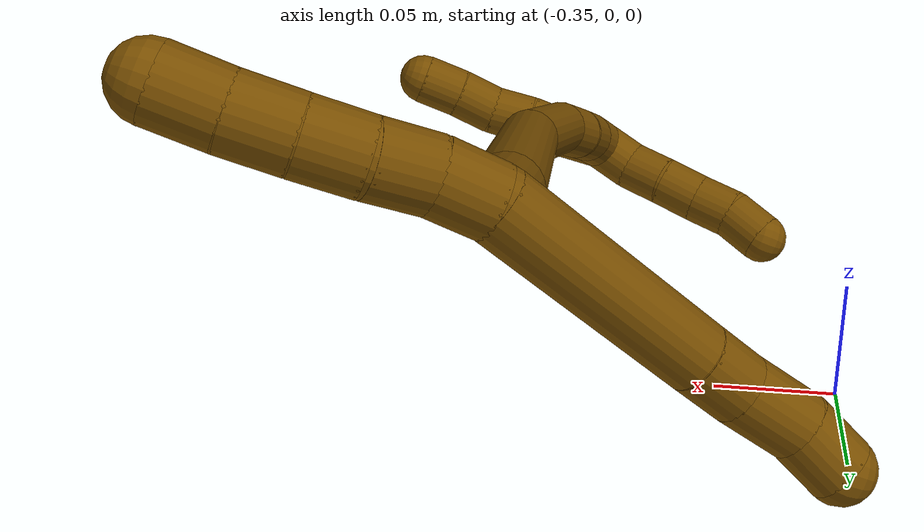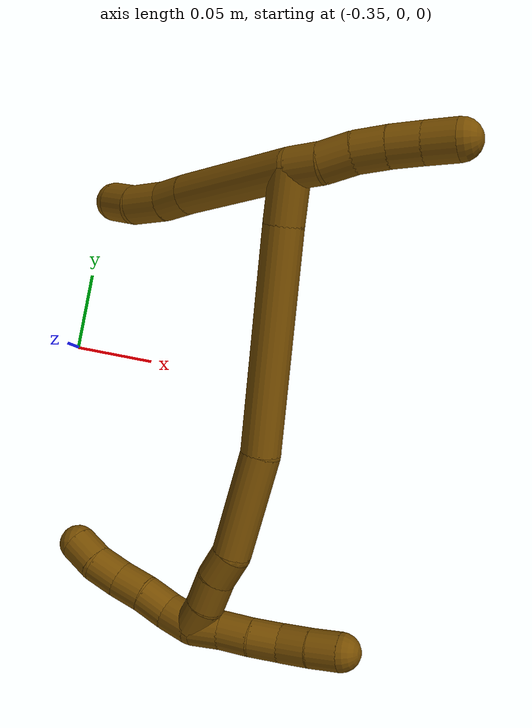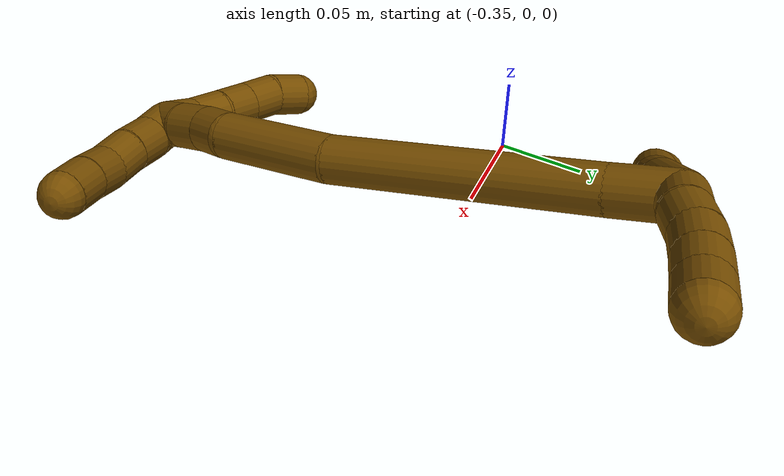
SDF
<sdf version="1.7">
 <world name="default">
  <model name="12">
   <static>0</static>
   <link name="12">
    <collision name="collision-cylinder-e_1_2_8">
     <pose>-0.012821 -0.003618 0.03956 0.091214 -0.312192 -0.014365</pose>
     <geometry><cylinder><radius>0.0125</radius><length>0.083485</length></cylinder></geometry>
     <surface>
      <friction><ode><mu>1.16</mu><mu2>1.16</mu2><slip1>0</slip1><slip2>0</slip2></ode></friction>
      <contact><ode><kp>1e+06</kp><kd>1</kd><max_vel>0</max_vel><min_depth>0.001</min_depth></ode></contact>
     </surface>
    </collision>
    <visual name="visual-cylinder-e_1_2_8">
     <pose>-0.012821 -0.003618 0.03956 0.091214 -0.312192 -0.014365</pose>
     <geometry><cylinder><radius>0.0125</radius><length>0.083485</length></cylinder></geometry>
     <material><ambient>0.466667 0.301961 0 1</ambient></material>
    </visual>
    <collision name="collision-cylinder-e_2_8_9">
     <pose>-0.028686 -0.008532 0.088556 0.136434 -0.309344 -0.021305</pose>
     <geometry><cylinder><radius>0.0125</radius><length>0.02</length></cylinder></geometry>
     <surface>
      <friction><ode><mu>1.16</mu><mu2>1.16</mu2><slip1>0</slip1><slip2>0</slip2></ode></friction>
      <contact><ode><kp>1e+06</kp><kd>1</kd><max_vel>0</max_vel><min_depth>0.001</min_depth></ode></contact>
     </surface>
    </collision>
    <visual name="visual-cylinder-e_2_8_9">
     <pose>-0.028686 -0.008532 0.088556 0.136434 -0.309344 -0.021305</pose>
     <geometry><cylinder><radius>0.0125</radius><length>0.02</length></cylinder></geometry>
     <material><ambient>0.466667 0.301961 0 1</ambient></material>
    </visual>
    <collision name="collision-cylinder-e_3_9_10">
     <pose>-0.034634 -0.009941 0.110633 0.008936 -0.225742 -0.001013</pose>
     <geometry><cylinder><radius>0.0125</radius><length>0.025939</length></cylinder></geometry>
     <surface>
      <friction><ode><mu>1.16</mu><mu2>1.16</mu2><slip1>0</slip1><slip2>0</slip2></ode></friction>
      <contact><ode><kp>1e+06</kp><kd>1</kd><max_vel>0</max_vel><min_depth>0.001</min_depth></ode></contact>
     </surface>
    </collision>
    <visual name="visual-cylinder-e_3_9_10">
     <pose>-0.034634 -0.009941 0.110633 0.008936 -0.225742 -0.001013</pose>
     <geometry><cylinder><radius>0.0125</radius><length>0.025939</length></cylinder></geometry>
     <material><ambient>0.466667 0.301961 0 1</ambient></material>
    </visual>
    <collision name="collision-cylinder-e_4_10_6">
     <pose>-0.041587 -0.008222 0.132551 -0.194952 -0.404697 0.040117</pose>
     <geometry><cylinder><radius>0.0125</radius><length>0.020576</length></cylinder></geometry>
     <surface>
      <friction><ode><mu>1.16</mu><mu2>1.16</mu2><slip1>0</slip1><slip2>0</slip2></ode></friction>
      <contact><ode><kp>1e+06</kp><kd>1</kd><max_vel>0</max_vel><min_depth>0.001</min_depth></ode></contact>
     </surface>
    </collision>
    <visual name="visual-cylinder-e_4_10_6">
     <pose>-0.041587 -0.008222 0.132551 -0.194952 -0.404697 0.040117</pose>
     <geometry><cylinder><radius>0.0125</radius><length>0.020576</length></cylinder></geometry>
     <material><ambient>0.466667 0.301961 0 1</ambient></material>
    </visual>
    <collision name="collision-cylinder-e_1_2_11">
     <pose>0.00074 0.000485 -0.009961 -3.09296 0.07402 -1.97923</pose>
     <geometry><cylinder><radius>0.0125</radius><length>0.02</length></cylinder></geometry>
     <surface>
      <friction><ode><mu>1.16</mu><mu2>1.16</mu2><slip1>0</slip1><slip2>0</slip2></ode></friction>
      <contact><ode><kp>1e+06</kp><kd>1</kd><max_vel>0</max_vel><min_depth>0.001</min_depth></ode></contact>
     </surface>
    </collision>
    <visual name="visual-cylinder-e_1_2_11">
     <pose>0.00074 0.000485 -0.009961 -3.09296 0.07402 -1.97923</pose>
     <geometry><cylinder><radius>0.0125</radius><length>0.02</length></cylinder></geometry>
     <material><ambient>0.466667 0.301961 0 1</ambient></material>
    </visual>
    <collision name="collision-cylinder-e_2_11_12">
     <pose>0.001053 0.003026 -0.029699 -2.93431 -0.042581 0.403868</pose>
     <geometry><cylinder><radius>0.0125</radius><length>0.02</length></cylinder></geometry>
     <surface>
      <friction><ode><mu>1.16</mu><mu2>1.16</mu2><slip1>0</slip1><slip2>0</slip2></ode></friction>
      <contact><ode><kp>1e+06</kp><kd>1</kd><max_vel>0</max_vel><min_depth>0.001</min_depth></ode></contact>
     </surface>
    </collision>
    <visual name="visual-cylinder-e_2_11_12">
     <pose>0.001053 0.003026 -0.029699 -2.93431 -0.042581 0.403868</pose>
     <geometry><cylinder><radius>0.0125</radius><length>0.02</length></cylinder></geometry>
     <material><ambient>0.466667 0.301961 0 1</ambient></material>
    </visual>
    <collision name="collision-cylinder-e_3_12_13">
     <pose>0.000288 0.005692 -0.049451 -3.08052 -0.034021 1.01634</pose>
     <geometry><cylinder><radius>0.0125</radius><length>0.02</length></cylinder></geometry>
     <surface>
      <friction><ode><mu>1.16</mu><mu2>1.16</mu2><slip1>0</slip1><slip2>0</slip2></ode></friction>
      <contact><ode><kp>1e+06</kp><kd>1</kd><max_vel>0</max_vel><min_depth>0.001</min_depth></ode></contact>
     </surface>
    </collision>
    <visual name="visual-cylinder-e_3_12_13">
     <pose>0.000288 0.005692 -0.049451 -3.08052 -0.034021 1.01634</pose>
     <geometry><cylinder><radius>0.0125</radius><length>0.02</length></cylinder></geometry>
     <material><ambient>0.466667 0.301961 0 1</ambient></material>
    </visual>
    <collision name="collision-cylinder-e_4_13_14">
     <pose>-0.000325 0.006366 -0.069423 -3.13521 -0.027265 2.68195</pose>
     <geometry><cylinder><radius>0.0125</radius><length>0.02</length></cylinder></geometry>
     <surface>
      <friction><ode><mu>1.16</mu><mu2>1.16</mu2><slip1>0</slip1><slip2>0</slip2></ode></friction>
      <contact><ode><kp>1e+06</kp><kd>1</kd><max_vel>0</max_vel><min_depth>0.001</min_depth></ode></contact>
     </surface>
    </collision>
    <visual name="visual-cylinder-e_4_13_14">
     <pose>-0.000325 0.006366 -0.069423 -3.13521 -0.027265 2.68195</pose>
     <geometry><cylinder><radius>0.0125</radius><length>0.02</length></cylinder></geometry>
     <material><ambient>0.466667 0.301961 0 1</ambient></material>
    </visual>
    <collision name="collision-cylinder-e_5_14_5">
     <pose>-0.000366 0.006311 -0.089416 3.12975 0.023187 2.19722</pose>
     <geometry><cylinder><radius>0.0125</radius><length>0.02</length></cylinder></geometry>
     <surface>
      <friction><ode><mu>1.16</mu><mu2>1.16</mu2><slip1>0</slip1><slip2>0</slip2></ode></friction>
      <contact><ode><kp>1e+06</kp><kd>1</kd><max_vel>0</max_vel><min_depth>0.001</min_depth></ode></contact>
     </surface>
    </collision>
    <visual name="visual-cylinder-e_5_14_5">
     <pose>-0.000366 0.006311 -0.089416 3.12975 0.023187 2.19722</pose>
     <geometry><cylinder><radius>0.0125</radius><length>0.02</length></cylinder></geometry>
     <material><ambient>0.466667 0.301961 0 1</ambient></material>
    </visual>
    <collision name="collision-cylinder-e_1_2_15">
     <pose>-0.001106 -0.015857 0.003654 1.34432 -0.067836 -0.05399</pose>
     <geometry><cylinder><radius>0.0125</radius><length>0.032619</length></cylinder></geometry>
     <surface>
      <friction><ode><mu>1.16</mu><mu2>1.16</mu2><slip1>0</slip1><slip2>0</slip2></ode></friction>
      <contact><ode><kp>1e+06</kp><kd>1</kd><max_vel>0</max_vel><min_depth>0.001</min_depth></ode></contact>
     </surface>
    </collision>
    <visual name="visual-cylinder-e_1_2_15">
     <pose>-0.001106 -0.015857 0.003654 1.34432 -0.067836 -0.05399</pose>
     <geometry><cylinder><radius>0.0125</radius><length>0.032619</length></cylinder></geometry>
     <material><ambient>0.466667 0.301961 0 1</ambient></material>
    </visual>
    <collision name="collision-cylinder-e_2_15_16">
     <pose>-0.004574 -0.099486 0.020224 1.38247 -0.034237 -0.028329</pose>
     <geometry><cylinder><radius>0.0125</radius><length>0.138066</length></cylinder></geometry>
     <surface>
      <friction><ode><mu>1.16</mu><mu2>1.16</mu2><slip1>0</slip1><slip2>0</slip2></ode></friction>
      <contact><ode><kp>1e+06</kp><kd>1</kd><max_vel>0</max_vel><min_depth>0.001</min_depth></ode></contact>
     </surface>
    </collision>
    <visual name="visual-cylinder-e_2_15_16">
     <pose>-0.004574 -0.099486 0.020224 1.38247 -0.034237 -0.028329</pose>
     <geometry><cylinder><radius>0.0125</radius><length>0.138066</length></cylinder></geometry>
     <material><ambient>0.466667 0.301961 0 1</ambient></material>
    </visual>
    <collision name="collision-cylinder-e_3_16_17">
     <pose>-0.007014 -0.198661 0.045112 1.20656 -0.002275 -0.001567</pose>
     <geometry><cylinder><radius>0.0125</radius><length>0.067214</length></cylinder></geometry>
     <surface>
      <friction><ode><mu>1.16</mu><mu2>1.16</mu2><slip1>0</slip1><slip2>0</slip2></ode></friction>
      <contact><ode><kp>1e+06</kp><kd>1</kd><max_vel>0</max_vel><min_depth>0.001</min_depth></ode></contact>
     </surface>
    </collision>
    <visual name="visual-cylinder-e_3_16_17">
     <pose>-0.007014 -0.198661 0.045112 1.20656 -0.002275 -0.001567</pose>
     <geometry><cylinder><radius>0.0125</radius><length>0.067214</length></cylinder></geometry>
     <material><ambient>0.466667 0.301961 0 1</ambient></material>
    </visual>
    <collision name="collision-cylinder-e_4_17_18">
     <pose>-0.007968 -0.238157 0.063321 0.914269 -0.085718 -0.042183</pose>
     <geometry><cylinder><radius>0.0125</radius><length>0.020513</length></cylinder></geometry>
     <surface>
      <friction><ode><mu>1.16</mu><mu2>1.16</mu2><slip1>0</slip1><slip2>0</slip2></ode></friction>
      <contact><ode><kp>1e+06</kp><kd>1</kd><max_vel>0</max_vel><min_depth>0.001</min_depth></ode></contact>
     </surface>
    </collision>
    <visual name="visual-cylinder-e_4_17_18">
     <pose>-0.007968 -0.238157 0.063321 0.914269 -0.085718 -0.042183</pose>
     <geometry><cylinder><radius>0.0125</radius><length>0.020513</length></cylinder></geometry>
     <material><ambient>0.466667 0.301961 0 1</ambient></material>
    </visual>
    <collision name="collision-cylinder-e_5_18_19">
     <pose>-0.010115 -0.255631 0.07472 1.06772 -0.117994 -0.0698</pose>
     <geometry><cylinder><radius>0.0125</radius><length>0.02156</length></cylinder></geometry>
     <surface>
      <friction><ode><mu>1.16</mu><mu2>1.16</mu2><slip1>0</slip1><slip2>0</slip2></ode></friction>
      <contact><ode><kp>1e+06</kp><kd>1</kd><max_vel>0</max_vel><min_depth>0.001</min_depth></ode></contact>
     </surface>
    </collision>
    <visual name="visual-cylinder-e_5_18_19">
     <pose>-0.010115 -0.255631 0.07472 1.06772 -0.117994 -0.0698</pose>
     <geometry><cylinder><radius>0.0125</radius><length>0.02156</length></cylinder></geometry>
     <material><ambient>0.466667 0.301961 0 1</ambient></material>
    </visual>
    <collision name="collision-cylinder-e_6_19_1">
     <pose>-0.013242 -0.272911 0.085746 0.932259 -0.186569 -0.094068</pose>
     <geometry><cylinder><radius>0.0125</radius><length>0.020028</length></cylinder></geometry>
     <surface>
      <friction><ode><mu>1.16</mu><mu2>1.16</mu2><slip1>0</slip1><slip2>0</slip2></ode></friction>
      <contact><ode><kp>1e+06</kp><kd>1</kd><max_vel>0</max_vel><min_depth>0.001</min_depth></ode></contact>
     </surface>
    </collision>
    <visual name="visual-cylinder-e_6_19_1">
     <pose>-0.013242 -0.272911 0.085746 0.932259 -0.186569 -0.094068</pose>
     <geometry><cylinder><radius>0.0125</radius><length>0.020028</length></cylinder></geometry>
     <material><ambient>0.466667 0.301961 0 1</ambient></material>
    </visual>
    <collision name="collision-cylinder-e_1_1_20">
     <pose>-0.01605 -0.2819 0.081716 3.03212 -0.095171 -1.43096</pose>
     <geometry><cylinder><radius>0.0125</radius><length>0.02</length></cylinder></geometry>
     <surface>
      <friction><ode><mu>1.16</mu><mu2>1.16</mu2><slip1>0</slip1><slip2>0</slip2></ode></friction>
      <contact><ode><kp>1e+06</kp><kd>1</kd><max_vel>0</max_vel><min_depth>0.001</min_depth></ode></contact>
     </surface>
    </collision>
    <visual name="visual-cylinder-e_1_1_20">
     <pose>-0.01605 -0.2819 0.081716 3.03212 -0.095171 -1.43096</pose>
     <geometry><cylinder><radius>0.0125</radius><length>0.02</length></cylinder></geometry>
     <material><ambient>0.466667 0.301961 0 1</ambient></material>
    </visual>
    <collision name="collision-cylinder-e_2_20_21">
     <pose>-0.017276 -0.28479 0.061988 2.96026 -0.027594 -0.301235</pose>
     <geometry><cylinder><radius>0.0125</radius><length>0.02</length></cylinder></geometry>
     <surface>
      <friction><ode><mu>1.16</mu><mu2>1.16</mu2><slip1>0</slip1><slip2>0</slip2></ode></friction>
      <contact><ode><kp>1e+06</kp><kd>1</kd><max_vel>0</max_vel><min_depth>0.001</min_depth></ode></contact>
     </surface>
    </collision>
    <visual name="visual-cylinder-e_2_20_21">
     <pose>-0.017276 -0.28479 0.061988 2.96026 -0.027594 -0.301235</pose>
     <geometry><cylinder><radius>0.0125</radius><length>0.02</length></cylinder></geometry>
     <material><ambient>0.466667 0.301961 0 1</ambient></material>
    </visual>
    <collision name="collision-cylinder-e_3_21_22">
     <pose>-0.018842 -0.288254 0.04238 2.97324 -0.129445 -1.31</pose>
     <geometry><cylinder><radius>0.0125</radius><length>0.02</length></cylinder></geometry>
     <surface>
      <friction><ode><mu>1.16</mu><mu2>1.16</mu2><slip1>0</slip1><slip2>0</slip2></ode></friction>
      <contact><ode><kp>1e+06</kp><kd>1</kd><max_vel>0</max_vel><min_depth>0.001</min_depth></ode></contact>
     </surface>
    </collision>
    <visual name="visual-cylinder-e_3_21_22">
     <pose>-0.018842 -0.288254 0.04238 2.97324 -0.129445 -1.31</pose>
     <geometry><cylinder><radius>0.0125</radius><length>0.02</length></cylinder></geometry>
     <material><ambient>0.466667 0.301961 0 1</ambient></material>
    </visual>
    <collision name="collision-cylinder-e_4_22_23">
     <pose>-0.019364 -0.290618 0.022658 3.0711 0.077017 1.65927</pose>
     <geometry><cylinder><radius>0.0125</radius><length>0.02</length></cylinder></geometry>
     <surface>
      <friction><ode><mu>1.16</mu><mu2>1.16</mu2><slip1>0</slip1><slip2>0</slip2></ode></friction>
      <contact><ode><kp>1e+06</kp><kd>1</kd><max_vel>0</max_vel><min_depth>0.001</min_depth></ode></contact>
     </surface>
    </collision>
    <visual name="visual-cylinder-e_4_22_23">
     <pose>-0.019364 -0.290618 0.022658 3.0711 0.077017 1.65927</pose>
     <geometry><cylinder><radius>0.0125</radius><length>0.02</length></cylinder></geometry>
     <material><ambient>0.466667 0.301961 0 1</ambient></material>
    </visual>
    <collision name="collision-cylinder-e_5_23_4">
     <pose>-0.018554 -0.291887 0.002729 3.08489 0.00403 0.141877</pose>
     <geometry><cylinder><radius>0.0125</radius><length>0.02</length></cylinder></geometry>
     <surface>
      <friction><ode><mu>1.16</mu><mu2>1.16</mu2><slip1>0</slip1><slip2>0</slip2></ode></friction>
      <contact><ode><kp>1e+06</kp><kd>1</kd><max_vel>0</max_vel><min_depth>0.001</min_depth></ode></contact>
     </surface>
    </collision>
    <visual name="visual-cylinder-e_5_23_4">
     <pose>-0.018554 -0.291887 0.002729 3.08489 0.00403 0.141877</pose>
     <geometry><cylinder><radius>0.0125</radius><length>0.02</length></cylinder></geometry>
     <material><ambient>0.466667 0.301961 0 1</ambient></material>
    </visual>
    <collision name="collision-cylinder-e_1_1_24">
     <pose>-0.016869 -0.277094 0.100723 -0.387428 -0.177915 0.034991</pose>
     <geometry><cylinder><radius>0.0125</radius><length>0.02</length></cylinder></geometry>
     <surface>
      <friction><ode><mu>1.16</mu><mu2>1.16</mu2><slip1>0</slip1><slip2>0</slip2></ode></friction>
      <contact><ode><kp>1e+06</kp><kd>1</kd><max_vel>0</max_vel><min_depth>0.001</min_depth></ode></contact>
     </surface>
    </collision>
    <visual name="visual-cylinder-e_1_1_24">
     <pose>-0.016869 -0.277094 0.100723 -0.387428 -0.177915 0.034991</pose>
     <geometry><cylinder><radius>0.0125</radius><length>0.02</length></cylinder></geometry>
     <material><ambient>0.466667 0.301961 0 1</ambient></material>
    </visual>
    <collision name="collision-cylinder-e_2_24_25">
     <pose>-0.018485 -0.267861 0.118177 -0.584144 0.015344 -0.004614</pose>
     <geometry><cylinder><radius>0.0125</radius><length>0.02</length></cylinder></geometry>
     <surface>
      <friction><ode><mu>1.16</mu><mu2>1.16</mu2><slip1>0</slip1><slip2>0</slip2></ode></friction>
      <contact><ode><kp>1e+06</kp><kd>1</kd><max_vel>0</max_vel><min_depth>0.001</min_depth></ode></contact>
     </surface>
    </collision>
    <visual name="visual-cylinder-e_2_24_25">
     <pose>-0.018485 -0.267861 0.118177 -0.584144 0.015344 -0.004614</pose>
     <geometry><cylinder><radius>0.0125</radius><length>0.02</length></cylinder></geometry>
     <material><ambient>0.466667 0.301961 0 1</ambient></material>
    </visual>
    <collision name="collision-cylinder-e_3_25_26">
     <pose>-0.018637 -0.25797 0.135504 -0.453267 -0.030481 0.007029</pose>
     <geometry><cylinder><radius>0.0125</radius><length>0.02</length></cylinder></geometry>
     <surface>
      <friction><ode><mu>1.16</mu><mu2>1.16</mu2><slip1>0</slip1><slip2>0</slip2></ode></friction>
      <contact><ode><kp>1e+06</kp><kd>1</kd><max_vel>0</max_vel><min_depth>0.001</min_depth></ode></contact>
     </surface>
    </collision>
    <visual name="visual-cylinder-e_3_25_26">
     <pose>-0.018637 -0.25797 0.135504 -0.453267 -0.030481 0.007029</pose>
     <geometry><cylinder><radius>0.0125</radius><length>0.02</length></cylinder></geometry>
     <material><ambient>0.466667 0.301961 0 1</ambient></material>
    </visual>
    <collision name="collision-cylinder-e_4_26_27">
     <pose>-0.018701 -0.248311 0.152978 -0.556568 0.02408 -0.00688</pose>
     <geometry><cylinder><radius>0.0125</radius><length>0.02</length></cylinder></geometry>
     <surface>
      <friction><ode><mu>1.16</mu><mu2>1.16</mu2><slip1>0</slip1><slip2>0</slip2></ode></friction>
      <contact><ode><kp>1e+06</kp><kd>1</kd><max_vel>0</max_vel><min_depth>0.001</min_depth></ode></contact>
     </surface>
    </collision>
    <visual name="visual-cylinder-e_4_26_27">
     <pose>-0.018701 -0.248311 0.152978 -0.556568 0.02408 -0.00688</pose>
     <geometry><cylinder><radius>0.0125</radius><length>0.02</length></cylinder></geometry>
     <material><ambient>0.466667 0.301961 0 1</ambient></material>
    </visual>
    <collision name="collision-cylinder-e_5_27_3">
     <pose>-0.02043 -0.23706 0.169243 -0.65475 -0.198345 0.067553</pose>
     <geometry><cylinder><radius>0.0125</radius><length>0.02</length></cylinder></geometry>
     <surface>
      <friction><ode><mu>1.16</mu><mu2>1.16</mu2><slip1>0</slip1><slip2>0</slip2></ode></friction>
      <contact><ode><kp>1e+06</kp><kd>1</kd><max_vel>0</max_vel><min_depth>0.001</min_depth></ode></contact>
     </surface>
    </collision>
    <visual name="visual-cylinder-e_5_27_3">
     <pose>-0.02043 -0.23706 0.169243 -0.65475 -0.198345 0.067553</pose>
     <geometry><cylinder><radius>0.0125</radius><length>0.02</length></cylinder></geometry>
     <material><ambient>0.466667 0.301961 0 1</ambient></material>
    </visual>
    <collision name="collision-sphere-3">
     <pose>-0.022401 -0.23109 0.177019 0 -0 0</pose>
     <geometry><sphere><radius>0.0125</radius></sphere></geometry>
     <surface>
      <friction><ode><mu>1.16</mu><mu2>1.16</mu2><slip1>0</slip1><slip2>0</slip2></ode></friction>
      <contact><ode><kp>1e+06</kp><kd>1</kd><max_vel>0</max_vel><min_depth>0.001</min_depth></ode></contact>
     </surface>
    </collision>
    <visual name="visual-sphere-3">
     <pose>-0.022401 -0.23109 0.177019 0 -0 0</pose>
     <geometry><sphere><radius>0.0125</radius></sphere></geometry>
     <material><ambient>0.466667 0.301961 0 1</ambient></material>
    </visual>
    <collision name="collision-sphere-27">
     <pose>-0.01846 -0.24303 0.161466 0 -0 0</pose>
     <geometry><sphere><radius>0.0125</radius></sphere></geometry>
     <surface>
      <friction><ode><mu>1.16</mu><mu2>1.16</mu2><slip1>0</slip1><slip2>0</slip2></ode></friction>
      <contact><ode><kp>1e+06</kp><kd>1</kd><max_vel>0</max_vel><min_depth>0.001</min_depth></ode></contact>
     </surface>
    </collision>
    <visual name="visual-sphere-27">
     <pose>-0.01846 -0.24303 0.161466 0 -0 0</pose>
     <geometry><sphere><radius>0.0125</radius></sphere></geometry>
     <material><ambient>0.466667 0.301961 0 1</ambient></material>
    </visual>
    <collision name="collision-sphere-26">
     <pose>-0.018941 -0.253593 0.14449 0 -0 0</pose>
     <geometry><sphere><radius>0.0125</radius></sphere></geometry>
     <surface>
      <friction><ode><mu>1.16</mu><mu2>1.16</mu2><slip1>0</slip1><slip2>0</slip2></ode></friction>
      <contact><ode><kp>1e+06</kp><kd>1</kd><max_vel>0</max_vel><min_depth>0.001</min_depth></ode></contact>
     </surface>
    </collision>
    <visual name="visual-sphere-26">
     <pose>-0.018941 -0.253593 0.14449 0 -0 0</pose>
     <geometry><sphere><radius>0.0125</radius></sphere></geometry>
     <material><ambient>0.466667 0.301961 0 1</ambient></material>
    </visual>
    <collision name="collision-sphere-25">
     <pose>-0.018332 -0.262347 0.126518 0 -0 0</pose>
     <geometry><sphere><radius>0.0125</radius></sphere></geometry>
     <surface>
      <friction><ode><mu>1.16</mu><mu2>1.16</mu2><slip1>0</slip1><slip2>0</slip2></ode></friction>
      <contact><ode><kp>1e+06</kp><kd>1</kd><max_vel>0</max_vel><min_depth>0.001</min_depth></ode></contact>
     </surface>
    </collision>
    <visual name="visual-sphere-25">
     <pose>-0.018332 -0.262347 0.126518 0 -0 0</pose>
     <geometry><sphere><radius>0.0125</radius></sphere></geometry>
     <material><ambient>0.466667 0.301961 0 1</ambient></material>
    </visual>
    <collision name="collision-sphere-24">
     <pose>-0.018639 -0.273375 0.109836 0 -0 0</pose>
     <geometry><sphere><radius>0.0125</radius></sphere></geometry>
     <surface>
      <friction><ode><mu>1.16</mu><mu2>1.16</mu2><slip1>0</slip1><slip2>0</slip2></ode></friction>
      <contact><ode><kp>1e+06</kp><kd>1</kd><max_vel>0</max_vel><min_depth>0.001</min_depth></ode></contact>
     </surface>
    </collision>
    <visual name="visual-sphere-24">
     <pose>-0.018639 -0.273375 0.109836 0 -0 0</pose>
     <geometry><sphere><radius>0.0125</radius></sphere></geometry>
     <material><ambient>0.466667 0.301961 0 1</ambient></material>
    </visual>
    <collision name="collision-sphere-4">
     <pose>-0.018514 -0.292454 -0.007255 0 -0 0</pose>
     <geometry><sphere><radius>0.0125</radius></sphere></geometry>
     <surface>
      <friction><ode><mu>1.16</mu><mu2>1.16</mu2><slip1>0</slip1><slip2>0</slip2></ode></friction>
      <contact><ode><kp>1e+06</kp><kd>1</kd><max_vel>0</max_vel><min_depth>0.001</min_depth></ode></contact>
     </surface>
    </collision>
    <visual name="visual-sphere-4">
     <pose>-0.018514 -0.292454 -0.007255 0 -0 0</pose>
     <geometry><sphere><radius>0.0125</radius></sphere></geometry>
     <material><ambient>0.466667 0.301961 0 1</ambient></material>
    </visual>
    <collision name="collision-sphere-23">
     <pose>-0.018594 -0.29132 0.012712 0 -0 0</pose>
     <geometry><sphere><radius>0.0125</radius></sphere></geometry>
     <surface>
      <friction><ode><mu>1.16</mu><mu2>1.16</mu2><slip1>0</slip1><slip2>0</slip2></ode></friction>
      <contact><ode><kp>1e+06</kp><kd>1</kd><max_vel>0</max_vel><min_depth>0.001</min_depth></ode></contact>
     </surface>
    </collision>
    <visual name="visual-sphere-23">
     <pose>-0.018594 -0.29132 0.012712 0 -0 0</pose>
     <geometry><sphere><radius>0.0125</radius></sphere></geometry>
     <material><ambient>0.466667 0.301961 0 1</ambient></material>
    </visual>
    <collision name="collision-sphere-22">
     <pose>-0.020133 -0.289916 0.032604 0 -0 0</pose>
     <geometry><sphere><radius>0.0125</radius></sphere></geometry>
     <surface>
      <friction><ode><mu>1.16</mu><mu2>1.16</mu2><slip1>0</slip1><slip2>0</slip2></ode></friction>
      <contact><ode><kp>1e+06</kp><kd>1</kd><max_vel>0</max_vel><min_depth>0.001</min_depth></ode></contact>
     </surface>
    </collision>
    <visual name="visual-sphere-22">
     <pose>-0.020133 -0.289916 0.032604 0 -0 0</pose>
     <geometry><sphere><radius>0.0125</radius></sphere></geometry>
     <material><ambient>0.466667 0.301961 0 1</ambient></material>
    </visual>
    <collision name="collision-sphere-21">
     <pose>-0.017552 -0.286593 0.052156 0 -0 0</pose>
     <geometry><sphere><radius>0.0125</radius></sphere></geometry>
     <surface>
      <friction><ode><mu>1.16</mu><mu2>1.16</mu2><slip1>0</slip1><slip2>0</slip2></ode></friction>
      <contact><ode><kp>1e+06</kp><kd>1</kd><max_vel>0</max_vel><min_depth>0.001</min_depth></ode></contact>
     </surface>
    </collision>
    <visual name="visual-sphere-21">
     <pose>-0.017552 -0.286593 0.052156 0 -0 0</pose>
     <geometry><sphere><radius>0.0125</radius></sphere></geometry>
     <material><ambient>0.466667 0.301961 0 1</ambient></material>
    </visual>
    <collision name="collision-sphere-20">
     <pose>-0.017 -0.282987 0.07182 0 -0 0</pose>
     <geometry><sphere><radius>0.0125</radius></sphere></geometry>
     <surface>
      <friction><ode><mu>1.16</mu><mu2>1.16</mu2><slip1>0</slip1><slip2>0</slip2></ode></friction>
      <contact><ode><kp>1e+06</kp><kd>1</kd><max_vel>0</max_vel><min_depth>0.001</min_depth></ode></contact>
     </surface>
    </collision>
    <visual name="visual-sphere-20">
     <pose>-0.017 -0.282987 0.07182 0 -0 0</pose>
     <geometry><sphere><radius>0.0125</radius></sphere></geometry>
     <material><ambient>0.466667 0.301961 0 1</ambient></material>
    </visual>
    <collision name="collision-sphere-11">
     <pose>0.001479 0.00097 -0.019922 0 -0 0</pose>
     <geometry><sphere><radius>0.0125</radius></sphere></geometry>
     <surface>
      <friction><ode><mu>1.16</mu><mu2>1.16</mu2><slip1>0</slip1><slip2>0</slip2></ode></friction>
      <contact><ode><kp>1e+06</kp><kd>1</kd><max_vel>0</max_vel><min_depth>0.001</min_depth></ode></contact>
     </surface>
    </collision>
    <visual name="visual-sphere-11">
     <pose>0.001479 0.00097 -0.019922 0 -0 0</pose>
     <geometry><sphere><radius>0.0125</radius></sphere></geometry>
     <material><ambient>0.466667 0.301961 0 1</ambient></material>
    </visual>
    <collision name="collision-sphere-6">
     <pose>-0.045638 -0.00639 0.141828 0 -0 0</pose>
     <geometry><sphere><radius>0.0125</radius></sphere></geometry>
     <surface>
      <friction><ode><mu>1.16</mu><mu2>1.16</mu2><slip1>0</slip1><slip2>0</slip2></ode></friction>
      <contact><ode><kp>1e+06</kp><kd>1</kd><max_vel>0</max_vel><min_depth>0.001</min_depth></ode></contact>
     </surface>
    </collision>
    <visual name="visual-sphere-6">
     <pose>-0.045638 -0.00639 0.141828 0 -0 0</pose>
     <geometry><sphere><radius>0.0125</radius></sphere></geometry>
     <material><ambient>0.466667 0.301961 0 1</ambient></material>
    </visual>
    <collision name="collision-sphere-10">
     <pose>-0.037537 -0.010054 0.123273 0 -0 0</pose>
     <geometry><sphere><radius>0.0125</radius></sphere></geometry>
     <surface>
      <friction><ode><mu>1.16</mu><mu2>1.16</mu2><slip1>0</slip1><slip2>0</slip2></ode></friction>
      <contact><ode><kp>1e+06</kp><kd>1</kd><max_vel>0</max_vel><min_depth>0.001</min_depth></ode></contact>
     </surface>
    </collision>
    <visual name="visual-sphere-10">
     <pose>-0.037537 -0.010054 0.123273 0 -0 0</pose>
     <geometry><sphere><radius>0.0125</radius></sphere></geometry>
     <material><ambient>0.466667 0.301961 0 1</ambient></material>
    </visual>
    <collision name="collision-sphere-9">
     <pose>-0.031731 -0.009828 0.097993 0 -0 0</pose>
     <geometry><sphere><radius>0.0125</radius></sphere></geometry>
     <surface>
      <friction><ode><mu>1.16</mu><mu2>1.16</mu2><slip1>0</slip1><slip2>0</slip2></ode></friction>
      <contact><ode><kp>1e+06</kp><kd>1</kd><max_vel>0</max_vel><min_depth>0.001</min_depth></ode></contact>
     </surface>
    </collision>
    <visual name="visual-sphere-9">
     <pose>-0.031731 -0.009828 0.097993 0 -0 0</pose>
     <geometry><sphere><radius>0.0125</radius></sphere></geometry>
     <material><ambient>0.466667 0.301961 0 1</ambient></material>
    </visual>
    <collision name="collision-sphere-2">
     <geometry><sphere><radius>0.0125</radius></sphere></geometry>
     <surface>
      <friction><ode><mu>1.16</mu><mu2>1.16</mu2><slip1>0</slip1><slip2>0</slip2></ode></friction>
      <contact><ode><kp>1e+06</kp><kd>1</kd><max_vel>0</max_vel><min_depth>0.001</min_depth></ode></contact>
     </surface>
    </collision>
    <visual name="visual-sphere-2">
     <geometry><sphere><radius>0.0125</radius></sphere></geometry>
     <material><ambient>0.466667 0.301961 0 1</ambient></material>
    </visual>
    <collision name="collision-sphere-19">
     <pose>-0.011384 -0.265009 0.079881 0 -0 0</pose>
     <geometry><sphere><radius>0.0125</radius></sphere></geometry>
     <surface>
      <friction><ode><mu>1.16</mu><mu2>1.16</mu2><slip1>0</slip1><slip2>0</slip2></ode></friction>
      <contact><ode><kp>1e+06</kp><kd>1</kd><max_vel>0</max_vel><min_depth>0.001</min_depth></ode></contact>
     </surface>
    </collision>
    <visual name="visual-sphere-19">
     <pose>-0.011384 -0.265009 0.079881 0 -0 0</pose>
     <geometry><sphere><radius>0.0125</radius></sphere></geometry>
     <material><ambient>0.466667 0.301961 0 1</ambient></material>
    </visual>
    <collision name="collision-sphere-8">
     <pose>-0.025642 -0.007237 0.079119 0 -0 0</pose>
     <geometry><sphere><radius>0.0125</radius></sphere></geometry>
     <surface>
      <friction><ode><mu>1.16</mu><mu2>1.16</mu2><slip1>0</slip1><slip2>0</slip2></ode></friction>
      <contact><ode><kp>1e+06</kp><kd>1</kd><max_vel>0</max_vel><min_depth>0.001</min_depth></ode></contact>
     </surface>
    </collision>
    <visual name="visual-sphere-8">
     <pose>-0.025642 -0.007237 0.079119 0 -0 0</pose>
     <geometry><sphere><radius>0.0125</radius></sphere></geometry>
     <material><ambient>0.466667 0.301961 0 1</ambient></material>
    </visual>
    <collision name="collision-sphere-12">
     <pose>0.000628 0.005082 -0.039476 0 -0 0</pose>
     <geometry><sphere><radius>0.0125</radius></sphere></geometry>
     <surface>
      <friction><ode><mu>1.16</mu><mu2>1.16</mu2><slip1>0</slip1><slip2>0</slip2></ode></friction>
      <contact><ode><kp>1e+06</kp><kd>1</kd><max_vel>0</max_vel><min_depth>0.001</min_depth></ode></contact>
     </surface>
    </collision>
    <visual name="visual-sphere-12">
     <pose>0.000628 0.005082 -0.039476 0 -0 0</pose>
     <geometry><sphere><radius>0.0125</radius></sphere></geometry>
     <material><ambient>0.466667 0.301961 0 1</ambient></material>
    </visual>
    <collision name="collision-sphere-13">
     <pose>-5.3e-05 0.006302 -0.059427 0 -0 0</pose>
     <geometry><sphere><radius>0.0125</radius></sphere></geometry>
     <surface>
      <friction><ode><mu>1.16</mu><mu2>1.16</mu2><slip1>0</slip1><slip2>0</slip2></ode></friction>
      <contact><ode><kp>1e+06</kp><kd>1</kd><max_vel>0</max_vel><min_depth>0.001</min_depth></ode></contact>
     </surface>
    </collision>
    <visual name="visual-sphere-13">
     <pose>-5.3e-05 0.006302 -0.059427 0 -0 0</pose>
     <geometry><sphere><radius>0.0125</radius></sphere></geometry>
     <material><ambient>0.466667 0.301961 0 1</ambient></material>
    </visual>
    <collision name="collision-sphere-14">
     <pose>-0.000598 0.006429 -0.079419 0 -0 0</pose>
     <geometry><sphere><radius>0.0125</radius></sphere></geometry>
     <surface>
      <friction><ode><mu>1.16</mu><mu2>1.16</mu2><slip1>0</slip1><slip2>0</slip2></ode></friction>
      <contact><ode><kp>1e+06</kp><kd>1</kd><max_vel>0</max_vel><min_depth>0.001</min_depth></ode></contact>
     </surface>
    </collision>
    <visual name="visual-sphere-14">
     <pose>-0.000598 0.006429 -0.079419 0 -0 0</pose>
     <geometry><sphere><radius>0.0125</radius></sphere></geometry>
     <material><ambient>0.466667 0.301961 0 1</ambient></material>
    </visual>
    <collision name="collision-sphere-5">
     <pose>-0.000134 0.006193 -0.099412 0 -0 0</pose>
     <geometry><sphere><radius>0.0125</radius></sphere></geometry>
     <surface>
      <friction><ode><mu>1.16</mu><mu2>1.16</mu2><slip1>0</slip1><slip2>0</slip2></ode></friction>
      <contact><ode><kp>1e+06</kp><kd>1</kd><max_vel>0</max_vel><min_depth>0.001</min_depth></ode></contact>
     </surface>
    </collision>
    <visual name="visual-sphere-5">
     <pose>-0.000134 0.006193 -0.099412 0 -0 0</pose>
     <geometry><sphere><radius>0.0125</radius></sphere></geometry>
     <material><ambient>0.466667 0.301961 0 1</ambient></material>
    </visual>
    <collision name="collision-sphere-15">
     <pose>-0.002211 -0.031713 0.007308 0 -0 0</pose>
     <geometry><sphere><radius>0.0125</radius></sphere></geometry>
     <surface>
      <friction><ode><mu>1.16</mu><mu2>1.16</mu2><slip1>0</slip1><slip2>0</slip2></ode></friction>
      <contact><ode><kp>1e+06</kp><kd>1</kd><max_vel>0</max_vel><min_depth>0.001</min_depth></ode></contact>
     </surface>
    </collision>
    <visual name="visual-sphere-15">
     <pose>-0.002211 -0.031713 0.007308 0 -0 0</pose>
     <geometry><sphere><radius>0.0125</radius></sphere></geometry>
     <material><ambient>0.466667 0.301961 0 1</ambient></material>
    </visual>
    <collision name="collision-sphere-16">
     <pose>-0.006937 -0.167259 0.03314 0 -0 0</pose>
     <geometry><sphere><radius>0.0125</radius></sphere></geometry>
     <surface>
      <friction><ode><mu>1.16</mu><mu2>1.16</mu2><slip1>0</slip1><slip2>0</slip2></ode></friction>
      <contact><ode><kp>1e+06</kp><kd>1</kd><max_vel>0</max_vel><min_depth>0.001</min_depth></ode></contact>
     </surface>
    </collision>
    <visual name="visual-sphere-16">
     <pose>-0.006937 -0.167259 0.03314 0 -0 0</pose>
     <geometry><sphere><radius>0.0125</radius></sphere></geometry>
     <material><ambient>0.466667 0.301961 0 1</ambient></material>
    </visual>
    <collision name="collision-sphere-17">
     <pose>-0.00709 -0.230063 0.057084 0 -0 0</pose>
     <geometry><sphere><radius>0.0125</radius></sphere></geometry>
     <surface>
      <friction><ode><mu>1.16</mu><mu2>1.16</mu2><slip1>0</slip1><slip2>0</slip2></ode></friction>
      <contact><ode><kp>1e+06</kp><kd>1</kd><max_vel>0</max_vel><min_depth>0.001</min_depth></ode></contact>
     </surface>
    </collision>
    <visual name="visual-sphere-17">
     <pose>-0.00709 -0.230063 0.057084 0 -0 0</pose>
     <geometry><sphere><radius>0.0125</radius></sphere></geometry>
     <material><ambient>0.466667 0.301961 0 1</ambient></material>
    </visual>
    <collision name="collision-sphere-18">
     <pose>-0.008846 -0.246252 0.069559 0 -0 0</pose>
     <geometry><sphere><radius>0.0125</radius></sphere></geometry>
     <surface>
      <friction><ode><mu>1.16</mu><mu2>1.16</mu2><slip1>0</slip1><slip2>0</slip2></ode></friction>
      <contact><ode><kp>1e+06</kp><kd>1</kd><max_vel>0</max_vel><min_depth>0.001</min_depth></ode></contact>
     </surface>
    </collision>
    <visual name="visual-sphere-18">
     <pose>-0.008846 -0.246252 0.069559 0 -0 0</pose>
     <geometry><sphere><radius>0.0125</radius></sphere></geometry>
     <material><ambient>0.466667 0.301961 0 1</ambient></material>
    </visual>
    <collision name="collision-sphere-1">
     <pose>-0.015099 -0.280812 0.091611 0 -0 0</pose>
     <geometry><sphere><radius>0.0125</radius></sphere></geometry>
     <surface>
      <friction><ode><mu>1.16</mu><mu2>1.16</mu2><slip1>0</slip1><slip2>0</slip2></ode></friction>
      <contact><ode><kp>1e+06</kp><kd>1</kd><max_vel>0</max_vel><min_depth>0.001</min_depth></ode></contact>
     </surface>
    </collision>
    <visual name="visual-sphere-1">
     <pose>-0.015099 -0.280812 0.091611 0 -0 0</pose>
     <geometry><sphere><radius>0.0125</radius></sphere></geometry>
     <material><ambient>0.466667 0.301961 0 1</ambient></material>
    </visual>
    <inertial>
     <pose>-0.01176 -0.13126 0.045393 0 -0 0</pose>
     <mass>0.75</mass>
     <inertia>
      <ixx>0.000313</ixx>
      <ixy>0</ixy>
      <ixz>0</ixz>
      <iyy>9.1e-05</iyy>
      <iyz>0</iyz>
      <izz>0.000292</izz>
     </inertia>
    </inertial>
   </link>
   <pose>-0.230741 0.120615 0.129705 2.85835 -1.14044 -2.62727</pose>
  </model>
 </world>
</sdf>
